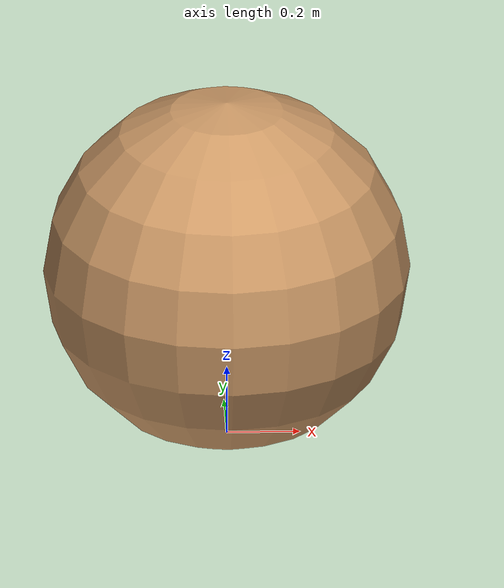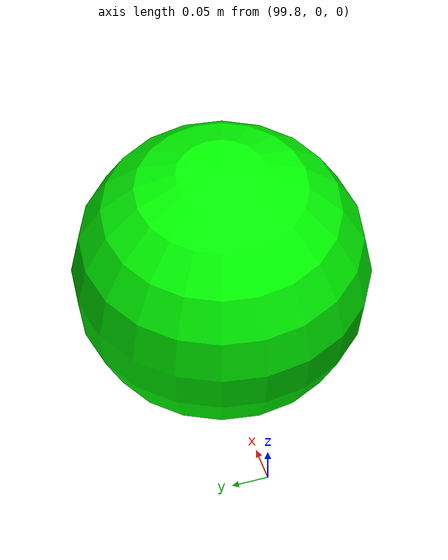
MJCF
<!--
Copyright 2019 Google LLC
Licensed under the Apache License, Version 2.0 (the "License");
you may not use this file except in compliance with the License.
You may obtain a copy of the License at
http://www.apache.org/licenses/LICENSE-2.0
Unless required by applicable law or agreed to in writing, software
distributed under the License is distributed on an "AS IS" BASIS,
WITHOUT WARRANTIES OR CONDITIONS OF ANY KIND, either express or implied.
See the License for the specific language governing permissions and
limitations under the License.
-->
<mujoco>
  <compiler angle="degree" coordinate="local" inertiafromgeom="true"/>
  <option integrator="RK4" timestep="0.02"/>
  <default>
    <joint armature="0" damping="0" limited="false"/>
    <geom conaffinity="0" condim="3" density="100" friction="1 0.5 0.5" margin="0" rgba="0.8 0.6 0.4 1"/>
  </default>
  <asset>
    <texture builtin="gradient" height="100" rgb1="1 1 1" rgb2="0 0 0" type="skybox" width="100"/>
    <texture builtin="flat" height="1278" mark="cross" markrgb="1 1 1" name="texgeom" random="0.01" rgb1="0.8 0.6 0.4" rgb2="0.8 0.6 0.4" type="cube" width="127"/>
    <texture builtin="flat" height="200" name="texplane" rgb1="0.2 0.3 0.4" type="2d" width="200"/>
    <material name="MatPlane" reflectance="0.5" shininess="1" specular="1" texrepeat="30 30" texture="texplane"/>
    <material name="geom" texture="texgeom" texuniform="true"/>
  </asset>
  <worldbody>
    <camera name='sample2' mode ='fixed' target ='torso' pos = '-1000 -1000 -2000' quat = '1 0 2 0.5'/>

    <light cutoff="100" diffuse="1 1 1" dir="-0 0 -1.3" directional="true" exponent="1" pos="0 0 1.3" specular=".1 .1 .1"/>
    <geom conaffinity="1" condim="3" material="MatPlane" name="floor" pos="0 0 0" rgba="0.8 0.9 0.8 1" size="40 40 40" type="plane"/>
    <body name="torso" pos="0 0 0">
      <camera name='sample' mode ='fixed'/>

      <geom name="pointbody" pos="0 0 0.5" size="0.5" type="sphere"/>
      <joint axis="1 0 0" name="ballx" pos="0 0 0" type="slide" range="-100 100"/>
      <joint axis="0 1 0" name="bally" pos="0 0 0" type="slide" range="-200 200"/>
    </body>
    <geom name="target1" pos="100.0 0 0.2" rgba="0 1 0 1" type="sphere" size="0.2"/>
  </worldbody>
  <actuator>
    <!-- Those are just dummy actuators for providing ranges -->
    <motor ctrllimited="true" ctrlrange="-1 1" joint="ballx"/>
    <motor ctrllimited="true" ctrlrange="-1 1" joint="bally"/>
  </actuator>
</mujoco>
